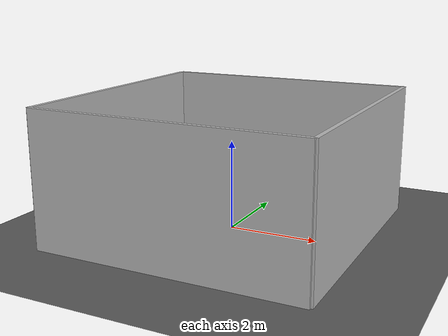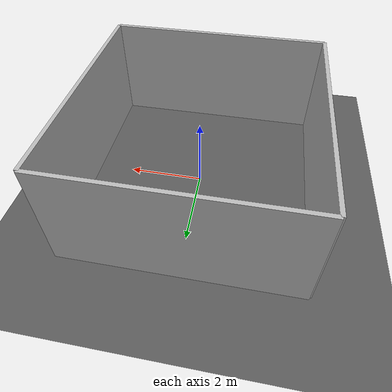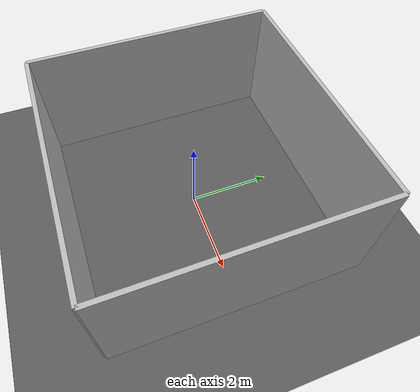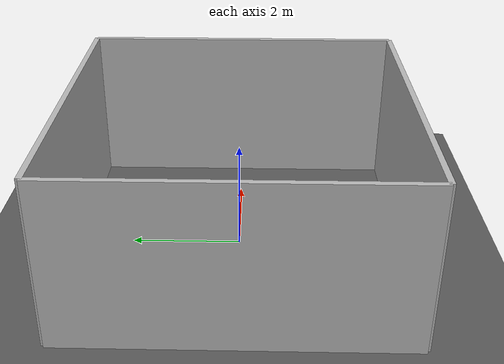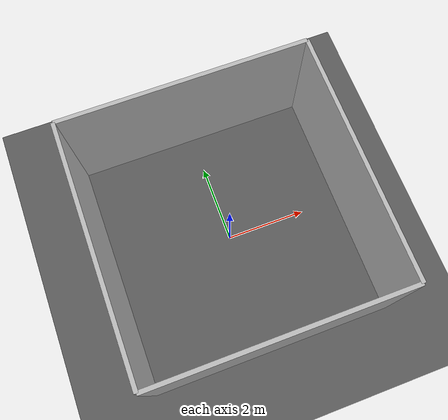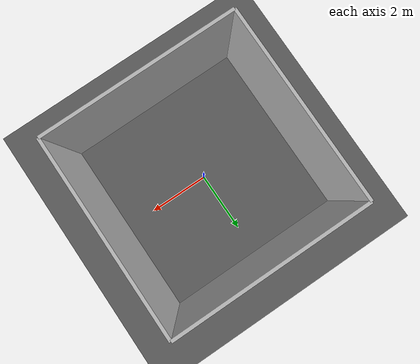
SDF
<?xml version='1.0' encoding='utf-8'?>
<sdf version="1.10">
  <world name="mid360_validation">
    <gravity>0 0 -9.81</gravity>
    <physics name="default_physics" type="ode">
      <max_step_size>0.001</max_step_size>
      <real_time_factor>1.0</real_time_factor>
      <real_time_update_rate>1000</real_time_update_rate>
    </physics>
    <plugin filename="gz-sim-physics-system" name="gz::sim::systems::Physics" />
    <plugin filename="gz-sim-user-commands-system" name="gz::sim::systems::UserCommands" />
    <plugin filename="gz-sim-scene-broadcaster-system" name="gz::sim::systems::SceneBroadcaster" />
    <plugin filename="gz-sim-sensors-system" name="gz::sim::systems::Sensors">
      <render_engine>ogre2</render_engine>
    </plugin>
    <light name="sun" type="directional">
      <cast_shadows>true</cast_shadows>
      <pose>0 0 10 0 0 0</pose>
      <diffuse>0.8 0.8 0.8 1</diffuse>
      <specular>0.2 0.2 0.2 1</specular>
      <direction>-0.4 0.2 -1.0</direction>
    </light>
    <model name="ground">
      <static>true</static>
      <link name="ground_link">
        <collision name="collision">
          <geometry>
            <plane>
              <normal>0 0 1</normal>
              <size>30 30</size>
            </plane>
          </geometry>
        </collision>
        <visual name="visual">
          <geometry>
            <plane>
              <normal>0 0 1</normal>
              <size>30 30</size>
            </plane>
          </geometry>
          <material>
            <ambient>0.25 0.25 0.25 1</ambient>
            <diffuse>0.35 0.35 0.35 1</diffuse>
          </material>
        </visual>
      </link>
    </model>
    <model name="east_wall">
      <static>true</static>
      <pose>3 0 1.5 0 0 0</pose>
      <link name="wall">
        <visual name="visual">
          <geometry>
            <box>
              <size>0.1 6 3</size>
            </box>
          </geometry>
          <laser_retro>100</laser_retro>
        </visual>
        <collision name="collision">
          <geometry>
            <box>
              <size>0.1 6 3</size>
            </box>
          </geometry>
        </collision>
      </link>
    </model>
    <model name="west_wall">
      <static>true</static>
      <pose>-3 0 1.5 0 0 0</pose>
      <link name="wall">
        <visual name="visual">
          <geometry>
            <box>
              <size>0.1 6 3</size>
            </box>
          </geometry>
          <laser_retro>100</laser_retro>
        </visual>
        <collision name="collision">
          <geometry>
            <box>
              <size>0.1 6 3</size>
            </box>
          </geometry>
        </collision>
      </link>
    </model>
    <model name="north_wall">
      <static>true</static>
      <pose>0 3 1.5 0 0 0</pose>
      <link name="wall">
        <visual name="visual">
          <geometry>
            <box>
              <size>6 0.1 3</size>
            </box>
          </geometry>
          <laser_retro>100</laser_retro>
        </visual>
        <collision name="collision">
          <geometry>
            <box>
              <size>6 0.1 3</size>
            </box>
          </geometry>
        </collision>
      </link>
    </model>
    <model name="south_wall">
      <static>true</static>
      <pose>0 -3 1.5 0 0 0</pose>
      <link name="wall">
        <visual name="visual">
          <geometry>
            <box>
              <size>6 0.1 3</size>
            </box>
          </geometry>
          <laser_retro>100</laser_retro>
        </visual>
        <collision name="collision">
          <geometry>
            <box>
              <size>6 0.1 3</size>
            </box>
          </geometry>
        </collision>
      </link>
    </model>
  </world>
</sdf>
